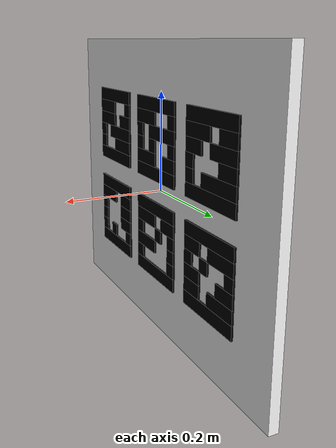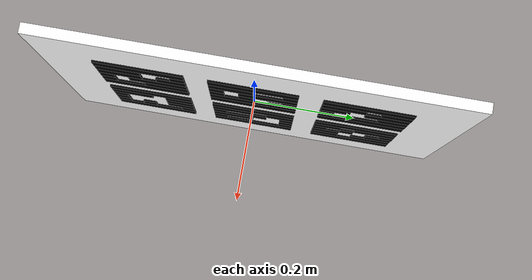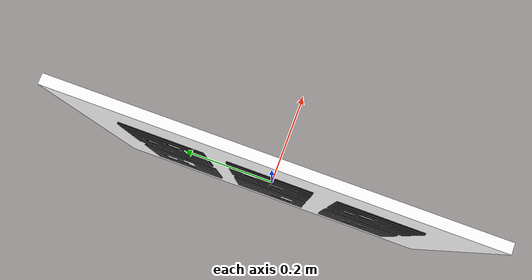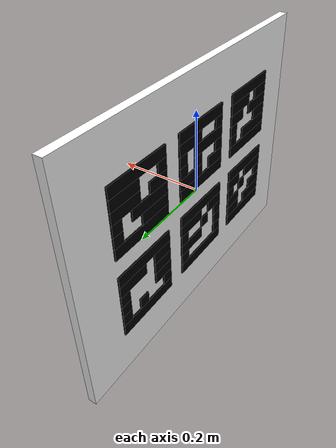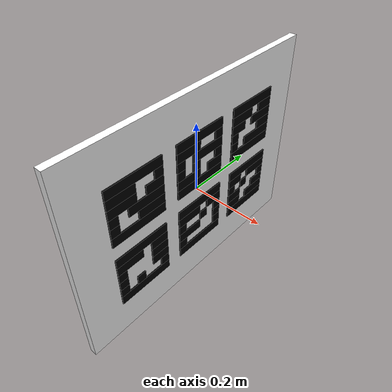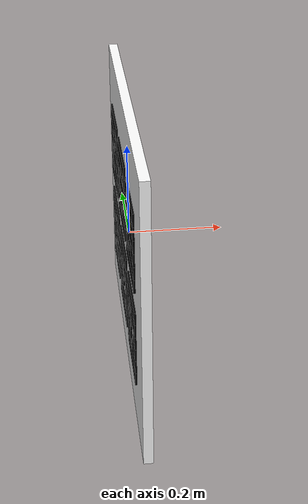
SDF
<sdf version="1.8">
 <model name="aruco_station_G_ids_42_47">
  <static>true</static>
  <link name="target_link">
   <visual name="white_board_base">
    <cast_shadows>false</cast_shadows>
    <geometry><box><size>0.02000000 0.80000000 0.60000000</size></box></geometry>
    <material>
     <ambient>1 1 1 1</ambient>
     <diffuse>1 1 1 1</diffuse>
     <specular>0 0 0 1</specular>
     <emissive>1 1 1 1</emissive>
    </material>
   </visual>
   <visual name="black_cell_front_plus_x_id42_r0_c0_6">
    <cast_shadows>false</cast_shadows>
    <pose>0.01300000 -0.21111111 0.17500000 0.00000000 0.00000000 0.00000000</pose>
    <geometry><box><size>0.00400000 0.16666667 0.02777778</size></box></geometry>
    <material>
     <ambient>0 0 0 1</ambient>
     <diffuse>0 0 0 1</diffuse>
     <specular>0 0 0 1</specular>
     <emissive>0 0 0 1</emissive>
    </material>
   </visual>
   <visual name="black_cell_front_plus_x_id42_r1_c0_3">
    <cast_shadows>false</cast_shadows>
    <pose>0.01300000 -0.25277778 0.14722222 0.00000000 0.00000000 0.00000000</pose>
    <geometry><box><size>0.00400000 0.08333333 0.02777778</size></box></geometry>
    <material>
     <ambient>0 0 0 1</ambient>
     <diffuse>0 0 0 1</diffuse>
     <specular>0 0 0 1</specular>
     <emissive>0 0 0 1</emissive>
    </material>
   </visual>
   <visual name="black_cell_front_plus_x_id42_r1_c5_6">
    <cast_shadows>false</cast_shadows>
    <pose>0.01300000 -0.14166667 0.14722222 0.00000000 0.00000000 0.00000000</pose>
    <geometry><box><size>0.00400000 0.02777778 0.02777778</size></box></geometry>
    <material>
     <ambient>0 0 0 1</ambient>
     <diffuse>0 0 0 1</diffuse>
     <specular>0 0 0 1</specular>
     <emissive>0 0 0 1</emissive>
    </material>
   </visual>
   <visual name="black_cell_front_plus_x_id42_r2_c0_3">
    <cast_shadows>false</cast_shadows>
    <pose>0.01300000 -0.25277778 0.11944444 0.00000000 0.00000000 0.00000000</pose>
    <geometry><box><size>0.00400000 0.08333333 0.02777778</size></box></geometry>
    <material>
     <ambient>0 0 0 1</ambient>
     <diffuse>0 0 0 1</diffuse>
     <specular>0 0 0 1</specular>
     <emissive>0 0 0 1</emissive>
    </material>
   </visual>
   <visual name="black_cell_front_plus_x_id42_r2_c4_6">
    <cast_shadows>false</cast_shadows>
    <pose>0.01300000 -0.15555556 0.11944444 0.00000000 0.00000000 0.00000000</pose>
    <geometry><box><size>0.00400000 0.05555556 0.02777778</size></box></geometry>
    <material>
     <ambient>0 0 0 1</ambient>
     <diffuse>0 0 0 1</diffuse>
     <specular>0 0 0 1</specular>
     <emissive>0 0 0 1</emissive>
    </material>
   </visual>
   <visual name="black_cell_front_plus_x_id42_r3_c0_1">
    <cast_shadows>false</cast_shadows>
    <pose>0.01300000 -0.28055556 0.09166667 0.00000000 0.00000000 0.00000000</pose>
    <geometry><box><size>0.00400000 0.02777778 0.02777778</size></box></geometry>
    <material>
     <ambient>0 0 0 1</ambient>
     <diffuse>0 0 0 1</diffuse>
     <specular>0 0 0 1</specular>
     <emissive>0 0 0 1</emissive>
    </material>
   </visual>
   <visual name="black_cell_front_plus_x_id42_r3_c2_6">
    <cast_shadows>false</cast_shadows>
    <pose>0.01300000 -0.18333333 0.09166667 0.00000000 0.00000000 0.00000000</pose>
    <geometry><box><size>0.00400000 0.11111111 0.02777778</size></box></geometry>
    <material>
     <ambient>0 0 0 1</ambient>
     <diffuse>0 0 0 1</diffuse>
     <specular>0 0 0 1</specular>
     <emissive>0 0 0 1</emissive>
    </material>
   </visual>
   <visual name="black_cell_front_plus_x_id42_r4_c0_1">
    <cast_shadows>false</cast_shadows>
    <pose>0.01300000 -0.28055556 0.06388889 0.00000000 0.00000000 0.00000000</pose>
    <geometry><box><size>0.00400000 0.02777778 0.02777778</size></box></geometry>
    <material>
     <ambient>0 0 0 1</ambient>
     <diffuse>0 0 0 1</diffuse>
     <specular>0 0 0 1</specular>
     <emissive>0 0 0 1</emissive>
    </material>
   </visual>
   <visual name="black_cell_front_plus_x_id42_r4_c3_6">
    <cast_shadows>false</cast_shadows>
    <pose>0.01300000 -0.16944444 0.06388889 0.00000000 0.00000000 0.00000000</pose>
    <geometry><box><size>0.00400000 0.08333333 0.02777778</size></box></geometry>
    <material>
     <ambient>0 0 0 1</ambient>
     <diffuse>0 0 0 1</diffuse>
     <specular>0 0 0 1</specular>
     <emissive>0 0 0 1</emissive>
    </material>
   </visual>
   <visual name="black_cell_front_plus_x_id42_r5_c0_6">
    <cast_shadows>false</cast_shadows>
    <pose>0.01300000 -0.21111111 0.03611111 0.00000000 0.00000000 0.00000000</pose>
    <geometry><box><size>0.00400000 0.16666667 0.02777778</size></box></geometry>
    <material>
     <ambient>0 0 0 1</ambient>
     <diffuse>0 0 0 1</diffuse>
     <specular>0 0 0 1</specular>
     <emissive>0 0 0 1</emissive>
    </material>
   </visual>
   <visual name="black_cell_back_minus_x_id42_r0_c0_6">
    <cast_shadows>false</cast_shadows>
    <pose>-0.01300000 0.21111111 0.17500000 0.00000000 0.00000000 0.00000000</pose>
    <geometry><box><size>0.00400000 0.16666667 0.02777778</size></box></geometry>
    <material>
     <ambient>0 0 0 1</ambient>
     <diffuse>0 0 0 1</diffuse>
     <specular>0 0 0 1</specular>
     <emissive>0 0 0 1</emissive>
    </material>
   </visual>
   <visual name="black_cell_back_minus_x_id42_r1_c0_3">
    <cast_shadows>false</cast_shadows>
    <pose>-0.01300000 0.25277778 0.14722222 0.00000000 0.00000000 0.00000000</pose>
    <geometry><box><size>0.00400000 0.08333333 0.02777778</size></box></geometry>
    <material>
     <ambient>0 0 0 1</ambient>
     <diffuse>0 0 0 1</diffuse>
     <specular>0 0 0 1</specular>
     <emissive>0 0 0 1</emissive>
    </material>
   </visual>
   <visual name="black_cell_back_minus_x_id42_r1_c5_6">
    <cast_shadows>false</cast_shadows>
    <pose>-0.01300000 0.14166667 0.14722222 0.00000000 0.00000000 0.00000000</pose>
    <geometry><box><size>0.00400000 0.02777778 0.02777778</size></box></geometry>
    <material>
     <ambient>0 0 0 1</ambient>
     <diffuse>0 0 0 1</diffuse>
     <specular>0 0 0 1</specular>
     <emissive>0 0 0 1</emissive>
    </material>
   </visual>
   <visual name="black_cell_back_minus_x_id42_r2_c0_3">
    <cast_shadows>false</cast_shadows>
    <pose>-0.01300000 0.25277778 0.11944444 0.00000000 0.00000000 0.00000000</pose>
    <geometry><box><size>0.00400000 0.08333333 0.02777778</size></box></geometry>
    <material>
     <ambient>0 0 0 1</ambient>
     <diffuse>0 0 0 1</diffuse>
     <specular>0 0 0 1</specular>
     <emissive>0 0 0 1</emissive>
    </material>
   </visual>
   <visual name="black_cell_back_minus_x_id42_r2_c4_6">
    <cast_shadows>false</cast_shadows>
    <pose>-0.01300000 0.15555556 0.11944444 0.00000000 0.00000000 0.00000000</pose>
    <geometry><box><size>0.00400000 0.05555556 0.02777778</size></box></geometry>
    <material>
     <ambient>0 0 0 1</ambient>
     <diffuse>0 0 0 1</diffuse>
     <specular>0 0 0 1</specular>
     <emissive>0 0 0 1</emissive>
    </material>
   </visual>
   <visual name="black_cell_back_minus_x_id42_r3_c0_1">
    <cast_shadows>false</cast_shadows>
    <pose>-0.01300000 0.28055556 0.09166667 0.00000000 0.00000000 0.00000000</pose>
    <geometry><box><size>0.00400000 0.02777778 0.02777778</size></box></geometry>
    <material>
     <ambient>0 0 0 1</ambient>
     <diffuse>0 0 0 1</diffuse>
     <specular>0 0 0 1</specular>
     <emissive>0 0 0 1</emissive>
    </material>
   </visual>
   <visual name="black_cell_back_minus_x_id42_r3_c2_6">
    <cast_shadows>false</cast_shadows>
    <pose>-0.01300000 0.18333333 0.09166667 0.00000000 0.00000000 0.00000000</pose>
    <geometry><box><size>0.00400000 0.11111111 0.02777778</size></box></geometry>
    <material>
     <ambient>0 0 0 1</ambient>
     <diffuse>0 0 0 1</diffuse>
     <specular>0 0 0 1</specular>
     <emissive>0 0 0 1</emissive>
    </material>
   </visual>
   <visual name="black_cell_back_minus_x_id42_r4_c0_1">
    <cast_shadows>false</cast_shadows>
    <pose>-0.01300000 0.28055556 0.06388889 0.00000000 0.00000000 0.00000000</pose>
    <geometry><box><size>0.00400000 0.02777778 0.02777778</size></box></geometry>
    <material>
     <ambient>0 0 0 1</ambient>
     <diffuse>0 0 0 1</diffuse>
     <specular>0 0 0 1</specular>
     <emissive>0 0 0 1</emissive>
    </material>
   </visual>
   <visual name="black_cell_back_minus_x_id42_r4_c3_6">
    <cast_shadows>false</cast_shadows>
    <pose>-0.01300000 0.16944444 0.06388889 0.00000000 0.00000000 0.00000000</pose>
    <geometry><box><size>0.00400000 0.08333333 0.02777778</size></box></geometry>
    <material>
     <ambient>0 0 0 1</ambient>
     <diffuse>0 0 0 1</diffuse>
     <specular>0 0 0 1</specular>
     <emissive>0 0 0 1</emissive>
    </material>
   </visual>
   <visual name="black_cell_back_minus_x_id42_r5_c0_6">
    <cast_shadows>false</cast_shadows>
    <pose>-0.01300000 0.21111111 0.03611111 0.00000000 0.00000000 0.00000000</pose>
    <geometry><box><size>0.00400000 0.16666667 0.02777778</size></box></geometry>
    <material>
     <ambient>0 0 0 1</ambient>
     <diffuse>0 0 0 1</diffuse>
     <specular>0 0 0 1</specular>
     <emissive>0 0 0 1</emissive>
    </material>
   </visual>
   <visual name="black_cell_front_plus_x_id43_r0_c0_6">
    <cast_shadows>false</cast_shadows>
    <pose>0.01300000 -0.00000000 0.17500000 0.00000000 0.00000000 0.00000000</pose>
    <geometry><box><size>0.00400000 0.16666667 0.02777778</size></box></geometry>
    <material>
     <ambient>0 0 0 1</ambient>
     <diffuse>0 0 0 1</diffuse>
     <specular>0 0 0 1</specular>
     <emissive>0 0 0 1</emissive>
    </material>
   </visual>
   <visual name="black_cell_front_plus_x_id43_r1_c0_3">
    <cast_shadows>false</cast_shadows>
    <pose>0.01300000 -0.04166667 0.14722222 0.00000000 0.00000000 0.00000000</pose>
    <geometry><box><size>0.00400000 0.08333333 0.02777778</size></box></geometry>
    <material>
     <ambient>0 0 0 1</ambient>
     <diffuse>0 0 0 1</diffuse>
     <specular>0 0 0 1</specular>
     <emissive>0 0 0 1</emissive>
    </material>
   </visual>
   <visual name="black_cell_front_plus_x_id43_r1_c5_6">
    <cast_shadows>false</cast_shadows>
    <pose>0.01300000 0.06944444 0.14722222 0.00000000 0.00000000 0.00000000</pose>
    <geometry><box><size>0.00400000 0.02777778 0.02777778</size></box></geometry>
    <material>
     <ambient>0 0 0 1</ambient>
     <diffuse>0 0 0 1</diffuse>
     <specular>0 0 0 1</specular>
     <emissive>0 0 0 1</emissive>
    </material>
   </visual>
   <visual name="black_cell_front_plus_x_id43_r2_c0_1">
    <cast_shadows>false</cast_shadows>
    <pose>0.01300000 -0.06944444 0.11944444 0.00000000 0.00000000 0.00000000</pose>
    <geometry><box><size>0.00400000 0.02777778 0.02777778</size></box></geometry>
    <material>
     <ambient>0 0 0 1</ambient>
     <diffuse>0 0 0 1</diffuse>
     <specular>0 0 0 1</specular>
     <emissive>0 0 0 1</emissive>
    </material>
   </visual>
   <visual name="black_cell_front_plus_x_id43_r2_c2_6">
    <cast_shadows>false</cast_shadows>
    <pose>0.01300000 0.02777778 0.11944444 0.00000000 0.00000000 0.00000000</pose>
    <geometry><box><size>0.00400000 0.11111111 0.02777778</size></box></geometry>
    <material>
     <ambient>0 0 0 1</ambient>
     <diffuse>0 0 0 1</diffuse>
     <specular>0 0 0 1</specular>
     <emissive>0 0 0 1</emissive>
    </material>
   </visual>
   <visual name="black_cell_front_plus_x_id43_r3_c0_1">
    <cast_shadows>false</cast_shadows>
    <pose>0.01300000 -0.06944444 0.09166667 0.00000000 0.00000000 0.00000000</pose>
    <geometry><box><size>0.00400000 0.02777778 0.02777778</size></box></geometry>
    <material>
     <ambient>0 0 0 1</ambient>
     <diffuse>0 0 0 1</diffuse>
     <specular>0 0 0 1</specular>
     <emissive>0 0 0 1</emissive>
    </material>
   </visual>
   <visual name="black_cell_front_plus_x_id43_r3_c2_3">
    <cast_shadows>false</cast_shadows>
    <pose>0.01300000 -0.01388889 0.09166667 0.00000000 0.00000000 0.00000000</pose>
    <geometry><box><size>0.00400000 0.02777778 0.02777778</size></box></geometry>
    <material>
     <ambient>0 0 0 1</ambient>
     <diffuse>0 0 0 1</diffuse>
     <specular>0 0 0 1</specular>
     <emissive>0 0 0 1</emissive>
    </material>
   </visual>
   <visual name="black_cell_front_plus_x_id43_r3_c5_6">
    <cast_shadows>false</cast_shadows>
    <pose>0.01300000 0.06944444 0.09166667 0.00000000 0.00000000 0.00000000</pose>
    <geometry><box><size>0.00400000 0.02777778 0.02777778</size></box></geometry>
    <material>
     <ambient>0 0 0 1</ambient>
     <diffuse>0 0 0 1</diffuse>
     <specular>0 0 0 1</specular>
     <emissive>0 0 0 1</emissive>
    </material>
   </visual>
   <visual name="black_cell_front_plus_x_id43_r4_c0_3">
    <cast_shadows>false</cast_shadows>
    <pose>0.01300000 -0.04166667 0.06388889 0.00000000 0.00000000 0.00000000</pose>
    <geometry><box><size>0.00400000 0.08333333 0.02777778</size></box></geometry>
    <material>
     <ambient>0 0 0 1</ambient>
     <diffuse>0 0 0 1</diffuse>
     <specular>0 0 0 1</specular>
     <emissive>0 0 0 1</emissive>
    </material>
   </visual>
   <visual name="black_cell_front_plus_x_id43_r4_c4_6">
    <cast_shadows>false</cast_shadows>
    <pose>0.01300000 0.05555556 0.06388889 0.00000000 0.00000000 0.00000000</pose>
    <geometry><box><size>0.00400000 0.05555556 0.02777778</size></box></geometry>
    <material>
     <ambient>0 0 0 1</ambient>
     <diffuse>0 0 0 1</diffuse>
     <specular>0 0 0 1</specular>
     <emissive>0 0 0 1</emissive>
    </material>
   </visual>
   <visual name="black_cell_front_plus_x_id43_r5_c0_6">
    <cast_shadows>false</cast_shadows>
    <pose>0.01300000 -0.00000000 0.03611111 0.00000000 0.00000000 0.00000000</pose>
    <geometry><box><size>0.00400000 0.16666667 0.02777778</size></box></geometry>
    <material>
     <ambient>0 0 0 1</ambient>
     <diffuse>0 0 0 1</diffuse>
     <specular>0 0 0 1</specular>
     <emissive>0 0 0 1</emissive>
    </material>
   </visual>
   <visual name="black_cell_back_minus_x_id43_r0_c0_6">
    <cast_shadows>false</cast_shadows>
    <pose>-0.01300000 0.00000000 0.17500000 0.00000000 0.00000000 0.00000000</pose>
    <geometry><box><size>0.00400000 0.16666667 0.02777778</size></box></geometry>
    <material>
     <ambient>0 0 0 1</ambient>
     <diffuse>0 0 0 1</diffuse>
     <specular>0 0 0 1</specular>
     <emissive>0 0 0 1</emissive>
    </material>
   </visual>
   <visual name="black_cell_back_minus_x_id43_r1_c0_3">
    <cast_shadows>false</cast_shadows>
    <pose>-0.01300000 0.04166667 0.14722222 0.00000000 0.00000000 0.00000000</pose>
    <geometry><box><size>0.00400000 0.08333333 0.02777778</size></box></geometry>
    <material>
     <ambient>0 0 0 1</ambient>
     <diffuse>0 0 0 1</diffuse>
     <specular>0 0 0 1</specular>
     <emissive>0 0 0 1</emissive>
    </material>
   </visual>
   <visual name="black_cell_back_minus_x_id43_r1_c5_6">
    <cast_shadows>false</cast_shadows>
    <pose>-0.01300000 -0.06944444 0.14722222 0.00000000 0.00000000 0.00000000</pose>
    <geometry><box><size>0.00400000 0.02777778 0.02777778</size></box></geometry>
    <material>
     <ambient>0 0 0 1</ambient>
     <diffuse>0 0 0 1</diffuse>
     <specular>0 0 0 1</specular>
     <emissive>0 0 0 1</emissive>
    </material>
   </visual>
   <visual name="black_cell_back_minus_x_id43_r2_c0_1">
    <cast_shadows>false</cast_shadows>
    <pose>-0.01300000 0.06944444 0.11944444 0.00000000 0.00000000 0.00000000</pose>
    <geometry><box><size>0.00400000 0.02777778 0.02777778</size></box></geometry>
    <material>
     <ambient>0 0 0 1</ambient>
     <diffuse>0 0 0 1</diffuse>
     <specular>0 0 0 1</specular>
     <emissive>0 0 0 1</emissive>
    </material>
   </visual>
   <visual name="black_cell_back_minus_x_id43_r2_c2_6">
    <cast_shadows>false</cast_shadows>
    <pose>-0.01300000 -0.02777778 0.11944444 0.00000000 0.00000000 0.00000000</pose>
    <geometry><box><size>0.00400000 0.11111111 0.02777778</size></box></geometry>
    <material>
     <ambient>0 0 0 1</ambient>
     <diffuse>0 0 0 1</diffuse>
     <specular>0 0 0 1</specular>
     <emissive>0 0 0 1</emissive>
    </material>
   </visual>
   <visual name="black_cell_back_minus_x_id43_r3_c0_1">
    <cast_shadows>false</cast_shadows>
    <pose>-0.01300000 0.06944444 0.09166667 0.00000000 0.00000000 0.00000000</pose>
    <geometry><box><size>0.00400000 0.02777778 0.02777778</size></box></geometry>
    <material>
     <ambient>0 0 0 1</ambient>
     <diffuse>0 0 0 1</diffuse>
     <specular>0 0 0 1</specular>
     <emissive>0 0 0 1</emissive>
    </material>
   </visual>
   <visual name="black_cell_back_minus_x_id43_r3_c2_3">
    <cast_shadows>false</cast_shadows>
    <pose>-0.01300000 0.01388889 0.09166667 0.00000000 0.00000000 0.00000000</pose>
    <geometry><box><size>0.00400000 0.02777778 0.02777778</size></box></geometry>
    <material>
     <ambient>0 0 0 1</ambient>
     <diffuse>0 0 0 1</diffuse>
     <specular>0 0 0 1</specular>
     <emissive>0 0 0 1</emissive>
    </material>
   </visual>
   <visual name="black_cell_back_minus_x_id43_r3_c5_6">
    <cast_shadows>false</cast_shadows>
    <pose>-0.01300000 -0.06944444 0.09166667 0.00000000 0.00000000 0.00000000</pose>
    <geometry><box><size>0.00400000 0.02777778 0.02777778</size></box></geometry>
    <material>
     <ambient>0 0 0 1</ambient>
     <diffuse>0 0 0 1</diffuse>
     <specular>0 0 0 1</specular>
     <emissive>0 0 0 1</emissive>
    </material>
   </visual>
   <visual name="black_cell_back_minus_x_id43_r4_c0_3">
    <cast_shadows>false</cast_shadows>
    <pose>-0.01300000 0.04166667 0.06388889 0.00000000 0.00000000 0.00000000</pose>
    <geometry><box><size>0.00400000 0.08333333 0.02777778</size></box></geometry>
    <material>
     <ambient>0 0 0 1</ambient>
     <diffuse>0 0 0 1</diffuse>
     <specular>0 0 0 1</specular>
     <emissive>0 0 0 1</emissive>
    </material>
   </visual>
   <visual name="black_cell_back_minus_x_id43_r4_c4_6">
    <cast_shadows>false</cast_shadows>
    <pose>-0.01300000 -0.05555556 0.06388889 0.00000000 0.00000000 0.00000000</pose>
    <geometry><box><size>0.00400000 0.05555556 0.02777778</size></box></geometry>
    <material>
     <ambient>0 0 0 1</ambient>
     <diffuse>0 0 0 1</diffuse>
     <specular>0 0 0 1</specular>
     <emissive>0 0 0 1</emissive>
    </material>
   </visual>
   <visual name="black_cell_back_minus_x_id43_r5_c0_6">
    <cast_shadows>false</cast_shadows>
    <pose>-0.01300000 0.00000000 0.03611111 0.00000000 0.00000000 0.00000000</pose>
    <geometry><box><size>0.00400000 0.16666667 0.02777778</size></box></geometry>
    <material>
     <ambient>0 0 0 1</ambient>
     <diffuse>0 0 0 1</diffuse>
     <specular>0 0 0 1</specular>
     <emissive>0 0 0 1</emissive>
    </material>
   </visual>
   <visual name="black_cell_front_plus_x_id44_r0_c0_6">
    <cast_shadows>false</cast_shadows>
    <pose>0.01300000 0.21111111 0.17500000 0.00000000 0.00000000 0.00000000</pose>
    <geometry><box><size>0.00400000 0.16666667 0.02777778</size></box></geometry>
    <material>
     <ambient>0 0 0 1</ambient>
     <diffuse>0 0 0 1</diffuse>
     <specular>0 0 0 1</specular>
     <emissive>0 0 0 1</emissive>
    </material>
   </visual>
   <visual name="black_cell_front_plus_x_id44_r1_c0_3">
    <cast_shadows>false</cast_shadows>
    <pose>0.01300000 0.16944444 0.14722222 0.00000000 0.00000000 0.00000000</pose>
    <geometry><box><size>0.00400000 0.08333333 0.02777778</size></box></geometry>
    <material>
     <ambient>0 0 0 1</ambient>
     <diffuse>0 0 0 1</diffuse>
     <specular>0 0 0 1</specular>
     <emissive>0 0 0 1</emissive>
    </material>
   </visual>
   <visual name="black_cell_front_plus_x_id44_r1_c4_6">
    <cast_shadows>false</cast_shadows>
    <pose>0.01300000 0.26666667 0.14722222 0.00000000 0.00000000 0.00000000</pose>
    <geometry><box><size>0.00400000 0.05555556 0.02777778</size></box></geometry>
    <material>
     <ambient>0 0 0 1</ambient>
     <diffuse>0 0 0 1</diffuse>
     <specular>0 0 0 1</specular>
     <emissive>0 0 0 1</emissive>
    </material>
   </visual>
   <visual name="black_cell_front_plus_x_id44_r2_c0_2">
    <cast_shadows>false</cast_shadows>
    <pose>0.01300000 0.15555556 0.11944444 0.00000000 0.00000000 0.00000000</pose>
    <geometry><box><size>0.00400000 0.05555556 0.02777778</size></box></geometry>
    <material>
     <ambient>0 0 0 1</ambient>
     <diffuse>0 0 0 1</diffuse>
     <specular>0 0 0 1</specular>
     <emissive>0 0 0 1</emissive>
    </material>
   </visual>
   <visual name="black_cell_front_plus_x_id44_r2_c3_6">
    <cast_shadows>false</cast_shadows>
    <pose>0.01300000 0.25277778 0.11944444 0.00000000 0.00000000 0.00000000</pose>
    <geometry><box><size>0.00400000 0.08333333 0.02777778</size></box></geometry>
    <material>
     <ambient>0 0 0 1</ambient>
     <diffuse>0 0 0 1</diffuse>
     <specular>0 0 0 1</specular>
     <emissive>0 0 0 1</emissive>
    </material>
   </visual>
   <visual name="black_cell_front_plus_x_id44_r3_c0_1">
    <cast_shadows>false</cast_shadows>
    <pose>0.01300000 0.14166667 0.09166667 0.00000000 0.00000000 0.00000000</pose>
    <geometry><box><size>0.00400000 0.02777778 0.02777778</size></box></geometry>
    <material>
     <ambient>0 0 0 1</ambient>
     <diffuse>0 0 0 1</diffuse>
     <specular>0 0 0 1</specular>
     <emissive>0 0 0 1</emissive>
    </material>
   </visual>
   <visual name="black_cell_front_plus_x_id44_r3_c4_6">
    <cast_shadows>false</cast_shadows>
    <pose>0.01300000 0.26666667 0.09166667 0.00000000 0.00000000 0.00000000</pose>
    <geometry><box><size>0.00400000 0.05555556 0.02777778</size></box></geometry>
    <material>
     <ambient>0 0 0 1</ambient>
     <diffuse>0 0 0 1</diffuse>
     <specular>0 0 0 1</specular>
     <emissive>0 0 0 1</emissive>
    </material>
   </visual>
   <visual name="black_cell_front_plus_x_id44_r4_c0_1">
    <cast_shadows>false</cast_shadows>
    <pose>0.01300000 0.14166667 0.06388889 0.00000000 0.00000000 0.00000000</pose>
    <geometry><box><size>0.00400000 0.02777778 0.02777778</size></box></geometry>
    <material>
     <ambient>0 0 0 1</ambient>
     <diffuse>0 0 0 1</diffuse>
     <specular>0 0 0 1</specular>
     <emissive>0 0 0 1</emissive>
    </material>
   </visual>
   <visual name="black_cell_front_plus_x_id44_r4_c2_6">
    <cast_shadows>false</cast_shadows>
    <pose>0.01300000 0.23888889 0.06388889 0.00000000 0.00000000 0.00000000</pose>
    <geometry><box><size>0.00400000 0.11111111 0.02777778</size></box></geometry>
    <material>
     <ambient>0 0 0 1</ambient>
     <diffuse>0 0 0 1</diffuse>
     <specular>0 0 0 1</specular>
     <emissive>0 0 0 1</emissive>
    </material>
   </visual>
   <visual name="black_cell_front_plus_x_id44_r5_c0_6">
    <cast_shadows>false</cast_shadows>
    <pose>0.01300000 0.21111111 0.03611111 0.00000000 0.00000000 0.00000000</pose>
    <geometry><box><size>0.00400000 0.16666667 0.02777778</size></box></geometry>
    <material>
     <ambient>0 0 0 1</ambient>
     <diffuse>0 0 0 1</diffuse>
     <specular>0 0 0 1</specular>
     <emissive>0 0 0 1</emissive>
    </material>
   </visual>
   <visual name="black_cell_back_minus_x_id44_r0_c0_6">
    <cast_shadows>false</cast_shadows>
    <pose>-0.01300000 -0.21111111 0.17500000 0.00000000 0.00000000 0.00000000</pose>
    <geometry><box><size>0.00400000 0.16666667 0.02777778</size></box></geometry>
    <material>
     <ambient>0 0 0 1</ambient>
     <diffuse>0 0 0 1</diffuse>
     <specular>0 0 0 1</specular>
     <emissive>0 0 0 1</emissive>
    </material>
   </visual>
   <visual name="black_cell_back_minus_x_id44_r1_c0_3">
    <cast_shadows>false</cast_shadows>
    <pose>-0.01300000 -0.16944444 0.14722222 0.00000000 0.00000000 0.00000000</pose>
    <geometry><box><size>0.00400000 0.08333333 0.02777778</size></box></geometry>
    <material>
     <ambient>0 0 0 1</ambient>
     <diffuse>0 0 0 1</diffuse>
     <specular>0 0 0 1</specular>
     <emissive>0 0 0 1</emissive>
    </material>
   </visual>
   <visual name="black_cell_back_minus_x_id44_r1_c4_6">
    <cast_shadows>false</cast_shadows>
    <pose>-0.01300000 -0.26666667 0.14722222 0.00000000 0.00000000 0.00000000</pose>
    <geometry><box><size>0.00400000 0.05555556 0.02777778</size></box></geometry>
    <material>
     <ambient>0 0 0 1</ambient>
     <diffuse>0 0 0 1</diffuse>
     <specular>0 0 0 1</specular>
     <emissive>0 0 0 1</emissive>
    </material>
   </visual>
   <visual name="black_cell_back_minus_x_id44_r2_c0_2">
    <cast_shadows>false</cast_shadows>
    <pose>-0.01300000 -0.15555556 0.11944444 0.00000000 0.00000000 0.00000000</pose>
    <geometry><box><size>0.00400000 0.05555556 0.02777778</size></box></geometry>
    <material>
     <ambient>0 0 0 1</ambient>
     <diffuse>0 0 0 1</diffuse>
     <specular>0 0 0 1</specular>
     <emissive>0 0 0 1</emissive>
    </material>
   </visual>
   <visual name="black_cell_back_minus_x_id44_r2_c3_6">
    <cast_shadows>false</cast_shadows>
    <pose>-0.01300000 -0.25277778 0.11944444 0.00000000 0.00000000 0.00000000</pose>
    <geometry><box><size>0.00400000 0.08333333 0.02777778</size></box></geometry>
    <material>
     <ambient>0 0 0 1</ambient>
     <diffuse>0 0 0 1</diffuse>
     <specular>0 0 0 1</specular>
     <emissive>0 0 0 1</emissive>
    </material>
   </visual>
   <visual name="black_cell_back_minus_x_id44_r3_c0_1">
    <cast_shadows>false</cast_shadows>
    <pose>-0.01300000 -0.14166667 0.09166667 0.00000000 0.00000000 0.00000000</pose>
    <geometry><box><size>0.00400000 0.02777778 0.02777778</size></box></geometry>
    <material>
     <ambient>0 0 0 1</ambient>
     <diffuse>0 0 0 1</diffuse>
     <specular>0 0 0 1</specular>
     <emissive>0 0 0 1</emissive>
    </material>
   </visual>
   <visual name="black_cell_back_minus_x_id44_r3_c4_6">
    <cast_shadows>false</cast_shadows>
    <pose>-0.01300000 -0.26666667 0.09166667 0.00000000 0.00000000 0.00000000</pose>
    <geometry><box><size>0.00400000 0.05555556 0.02777778</size></box></geometry>
    <material>
     <ambient>0 0 0 1</ambient>
     <diffuse>0 0 0 1</diffuse>
     <specular>0 0 0 1</specular>
     <emissive>0 0 0 1</emissive>
    </material>
   </visual>
   <visual name="black_cell_back_minus_x_id44_r4_c0_1">
    <cast_shadows>false</cast_shadows>
    <pose>-0.01300000 -0.14166667 0.06388889 0.00000000 0.00000000 0.00000000</pose>
    <geometry><box><size>0.00400000 0.02777778 0.02777778</size></box></geometry>
    <material>
     <ambient>0 0 0 1</ambient>
     <diffuse>0 0 0 1</diffuse>
     <specular>0 0 0 1</specular>
     <emissive>0 0 0 1</emissive>
    </material>
   </visual>
   <visual name="black_cell_back_minus_x_id44_r4_c2_6">
    <cast_shadows>false</cast_shadows>
    <pose>-0.01300000 -0.23888889 0.06388889 0.00000000 0.00000000 0.00000000</pose>
    <geometry><box><size>0.00400000 0.11111111 0.02777778</size></box></geometry>
    <material>
     <ambient>0 0 0 1</ambient>
     <diffuse>0 0 0 1</diffuse>
     <specular>0 0 0 1</specular>
     <emissive>0 0 0 1</emissive>
    </material>
   </visual>
   <visual name="black_cell_back_minus_x_id44_r5_c0_6">
    <cast_shadows>false</cast_shadows>
    <pose>-0.01300000 -0.21111111 0.03611111 0.00000000 0.00000000 0.00000000</pose>
    <geometry><box><size>0.00400000 0.16666667 0.02777778</size></box></geometry>
    <material>
     <ambient>0 0 0 1</ambient>
     <diffuse>0 0 0 1</diffuse>
     <specular>0 0 0 1</specular>
     <emissive>0 0 0 1</emissive>
    </material>
   </visual>
   <visual name="black_cell_front_plus_x_id45_r0_c0_6">
    <cast_shadows>false</cast_shadows>
    <pose>0.01300000 -0.21111111 -0.03611111 0.00000000 0.00000000 0.00000000</pose>
    <geometry><box><size>0.00400000 0.16666667 0.02777778</size></box></geometry>
    <material>
     <ambient>0 0 0 1</ambient>
     <diffuse>0 0 0 1</diffuse>
     <specular>0 0 0 1</specular>
     <emissive>0 0 0 1</emissive>
    </material>
   </visual>
   <visual name="black_cell_front_plus_x_id45_r1_c0_3">
    <cast_shadows>false</cast_shadows>
    <pose>0.01300000 -0.25277778 -0.06388889 0.00000000 0.00000000 0.00000000</pose>
    <geometry><box><size>0.00400000 0.08333333 0.02777778</size></box></geometry>
    <material>
     <ambient>0 0 0 1</ambient>
     <diffuse>0 0 0 1</diffuse>
     <specular>0 0 0 1</specular>
     <emissive>0 0 0 1</emissive>
    </material>
   </visual>
   <visual name="black_cell_front_plus_x_id45_r1_c4_6">
    <cast_shadows>false</cast_shadows>
    <pose>0.01300000 -0.15555556 -0.06388889 0.00000000 0.00000000 0.00000000</pose>
    <geometry><box><size>0.00400000 0.05555556 0.02777778</size></box></geometry>
    <material>
     <ambient>0 0 0 1</ambient>
     <diffuse>0 0 0 1</diffuse>
     <specular>0 0 0 1</specular>
     <emissive>0 0 0 1</emissive>
    </material>
   </visual>
   <visual name="black_cell_front_plus_x_id45_r2_c0_1">
    <cast_shadows>false</cast_shadows>
    <pose>0.01300000 -0.28055556 -0.09166667 0.00000000 0.00000000 0.00000000</pose>
    <geometry><box><size>0.00400000 0.02777778 0.02777778</size></box></geometry>
    <material>
     <ambient>0 0 0 1</ambient>
     <diffuse>0 0 0 1</diffuse>
     <specular>0 0 0 1</specular>
     <emissive>0 0 0 1</emissive>
    </material>
   </visual>
   <visual name="black_cell_front_plus_x_id45_r2_c4_6">
    <cast_shadows>false</cast_shadows>
    <pose>0.01300000 -0.15555556 -0.09166667 0.00000000 0.00000000 0.00000000</pose>
    <geometry><box><size>0.00400000 0.05555556 0.02777778</size></box></geometry>
    <material>
     <ambient>0 0 0 1</ambient>
     <diffuse>0 0 0 1</diffuse>
     <specular>0 0 0 1</specular>
     <emissive>0 0 0 1</emissive>
    </material>
   </visual>
   <visual name="black_cell_front_plus_x_id45_r3_c0_1">
    <cast_shadows>false</cast_shadows>
    <pose>0.01300000 -0.28055556 -0.11944444 0.00000000 0.00000000 0.00000000</pose>
    <geometry><box><size>0.00400000 0.02777778 0.02777778</size></box></geometry>
    <material>
     <ambient>0 0 0 1</ambient>
     <diffuse>0 0 0 1</diffuse>
     <specular>0 0 0 1</specular>
     <emissive>0 0 0 1</emissive>
    </material>
   </visual>
   <visual name="black_cell_front_plus_x_id45_r3_c4_6">
    <cast_shadows>false</cast_shadows>
    <pose>0.01300000 -0.15555556 -0.11944444 0.00000000 0.00000000 0.00000000</pose>
    <geometry><box><size>0.00400000 0.05555556 0.02777778</size></box></geometry>
    <material>
     <ambient>0 0 0 1</ambient>
     <diffuse>0 0 0 1</diffuse>
     <specular>0 0 0 1</specular>
     <emissive>0 0 0 1</emissive>
    </material>
   </visual>
   <visual name="black_cell_front_plus_x_id45_r4_c0_1">
    <cast_shadows>false</cast_shadows>
    <pose>0.01300000 -0.28055556 -0.14722222 0.00000000 0.00000000 0.00000000</pose>
    <geometry><box><size>0.00400000 0.02777778 0.02777778</size></box></geometry>
    <material>
     <ambient>0 0 0 1</ambient>
     <diffuse>0 0 0 1</diffuse>
     <specular>0 0 0 1</specular>
     <emissive>0 0 0 1</emissive>
    </material>
   </visual>
   <visual name="black_cell_front_plus_x_id45_r4_c2_3">
    <cast_shadows>false</cast_shadows>
    <pose>0.01300000 -0.22500000 -0.14722222 0.00000000 0.00000000 0.00000000</pose>
    <geometry><box><size>0.00400000 0.02777778 0.02777778</size></box></geometry>
    <material>
     <ambient>0 0 0 1</ambient>
     <diffuse>0 0 0 1</diffuse>
     <specular>0 0 0 1</specular>
     <emissive>0 0 0 1</emissive>
    </material>
   </visual>
   <visual name="black_cell_front_plus_x_id45_r4_c5_6">
    <cast_shadows>false</cast_shadows>
    <pose>0.01300000 -0.14166667 -0.14722222 0.00000000 0.00000000 0.00000000</pose>
    <geometry><box><size>0.00400000 0.02777778 0.02777778</size></box></geometry>
    <material>
     <ambient>0 0 0 1</ambient>
     <diffuse>0 0 0 1</diffuse>
     <specular>0 0 0 1</specular>
     <emissive>0 0 0 1</emissive>
    </material>
   </visual>
   <visual name="black_cell_front_plus_x_id45_r5_c0_6">
    <cast_shadows>false</cast_shadows>
    <pose>0.01300000 -0.21111111 -0.17500000 0.00000000 0.00000000 0.00000000</pose>
    <geometry><box><size>0.00400000 0.16666667 0.02777778</size></box></geometry>
    <material>
     <ambient>0 0 0 1</ambient>
     <diffuse>0 0 0 1</diffuse>
     <specular>0 0 0 1</specular>
     <emissive>0 0 0 1</emissive>
    </material>
   </visual>
   <visual name="black_cell_back_minus_x_id45_r0_c0_6">
    <cast_shadows>false</cast_shadows>
    <pose>-0.01300000 0.21111111 -0.03611111 0.00000000 0.00000000 0.00000000</pose>
    <geometry><box><size>0.00400000 0.16666667 0.02777778</size></box></geometry>
    <material>
     <ambient>0 0 0 1</ambient>
     <diffuse>0 0 0 1</diffuse>
     <specular>0 0 0 1</specular>
     <emissive>0 0 0 1</emissive>
    </material>
   </visual>
   <visual name="black_cell_back_minus_x_id45_r1_c0_3">
    <cast_shadows>false</cast_shadows>
    <pose>-0.01300000 0.25277778 -0.06388889 0.00000000 0.00000000 0.00000000</pose>
    <geometry><box><size>0.00400000 0.08333333 0.02777778</size></box></geometry>
    <material>
     <ambient>0 0 0 1</ambient>
     <diffuse>0 0 0 1</diffuse>
     <specular>0 0 0 1</specular>
     <emissive>0 0 0 1</emissive>
    </material>
   </visual>
   <visual name="black_cell_back_minus_x_id45_r1_c4_6">
    <cast_shadows>false</cast_shadows>
    <pose>-0.01300000 0.15555556 -0.06388889 0.00000000 0.00000000 0.00000000</pose>
    <geometry><box><size>0.00400000 0.05555556 0.02777778</size></box></geometry>
    <material>
     <ambient>0 0 0 1</ambient>
     <diffuse>0 0 0 1</diffuse>
     <specular>0 0 0 1</specular>
     <emissive>0 0 0 1</emissive>
    </material>
   </visual>
   <visual name="black_cell_back_minus_x_id45_r2_c0_1">
    <cast_shadows>false</cast_shadows>
    <pose>-0.01300000 0.28055556 -0.09166667 0.00000000 0.00000000 0.00000000</pose>
    <geometry><box><size>0.00400000 0.02777778 0.02777778</size></box></geometry>
    <material>
     <ambient>0 0 0 1</ambient>
     <diffuse>0 0 0 1</diffuse>
     <specular>0 0 0 1</specular>
     <emissive>0 0 0 1</emissive>
    </material>
   </visual>
   <visual name="black_cell_back_minus_x_id45_r2_c4_6">
    <cast_shadows>false</cast_shadows>
    <pose>-0.01300000 0.15555556 -0.09166667 0.00000000 0.00000000 0.00000000</pose>
    <geometry><box><size>0.00400000 0.05555556 0.02777778</size></box></geometry>
    <material>
     <ambient>0 0 0 1</ambient>
     <diffuse>0 0 0 1</diffuse>
     <specular>0 0 0 1</specular>
     <emissive>0 0 0 1</emissive>
    </material>
   </visual>
   <visual name="black_cell_back_minus_x_id45_r3_c0_1">
    <cast_shadows>false</cast_shadows>
    <pose>-0.01300000 0.28055556 -0.11944444 0.00000000 0.00000000 0.00000000</pose>
    <geometry><box><size>0.00400000 0.02777778 0.02777778</size></box></geometry>
    <material>
     <ambient>0 0 0 1</ambient>
     <diffuse>0 0 0 1</diffuse>
     <specular>0 0 0 1</specular>
     <emissive>0 0 0 1</emissive>
    </material>
   </visual>
   <visual name="black_cell_back_minus_x_id45_r3_c4_6">
    <cast_shadows>false</cast_shadows>
    <pose>-0.01300000 0.15555556 -0.11944444 0.00000000 0.00000000 0.00000000</pose>
    <geometry><box><size>0.00400000 0.05555556 0.02777778</size></box></geometry>
    <material>
     <ambient>0 0 0 1</ambient>
     <diffuse>0 0 0 1</diffuse>
     <specular>0 0 0 1</specular>
     <emissive>0 0 0 1</emissive>
    </material>
   </visual>
   <visual name="black_cell_back_minus_x_id45_r4_c0_1">
    <cast_shadows>false</cast_shadows>
    <pose>-0.01300000 0.28055556 -0.14722222 0.00000000 0.00000000 0.00000000</pose>
    <geometry><box><size>0.00400000 0.02777778 0.02777778</size></box></geometry>
    <material>
     <ambient>0 0 0 1</ambient>
     <diffuse>0 0 0 1</diffuse>
     <specular>0 0 0 1</specular>
     <emissive>0 0 0 1</emissive>
    </material>
   </visual>
   <visual name="black_cell_back_minus_x_id45_r4_c2_3">
    <cast_shadows>false</cast_shadows>
    <pose>-0.01300000 0.22500000 -0.14722222 0.00000000 0.00000000 0.00000000</pose>
    <geometry><box><size>0.00400000 0.02777778 0.02777778</size></box></geometry>
    <material>
     <ambient>0 0 0 1</ambient>
     <diffuse>0 0 0 1</diffuse>
     <specular>0 0 0 1</specular>
     <emissive>0 0 0 1</emissive>
    </material>
   </visual>
   <visual name="black_cell_back_minus_x_id45_r4_c5_6">
    <cast_shadows>false</cast_shadows>
    <pose>-0.01300000 0.14166667 -0.14722222 0.00000000 0.00000000 0.00000000</pose>
    <geometry><box><size>0.00400000 0.02777778 0.02777778</size></box></geometry>
    <material>
     <ambient>0 0 0 1</ambient>
     <diffuse>0 0 0 1</diffuse>
     <specular>0 0 0 1</specular>
     <emissive>0 0 0 1</emissive>
    </material>
   </visual>
   <visual name="black_cell_back_minus_x_id45_r5_c0_6">
    <cast_shadows>false</cast_shadows>
    <pose>-0.01300000 0.21111111 -0.17500000 0.00000000 0.00000000 0.00000000</pose>
    <geometry><box><size>0.00400000 0.16666667 0.02777778</size></box></geometry>
    <material>
     <ambient>0 0 0 1</ambient>
     <diffuse>0 0 0 1</diffuse>
     <specular>0 0 0 1</specular>
     <emissive>0 0 0 1</emissive>
    </material>
   </visual>
   <visual name="black_cell_front_plus_x_id46_r0_c0_6">
    <cast_shadows>false</cast_shadows>
    <pose>0.01300000 -0.00000000 -0.03611111 0.00000000 0.00000000 0.00000000</pose>
    <geometry><box><size>0.00400000 0.16666667 0.02777778</size></box></geometry>
    <material>
     <ambient>0 0 0 1</ambient>
     <diffuse>0 0 0 1</diffuse>
     <specular>0 0 0 1</specular>
     <emissive>0 0 0 1</emissive>
    </material>
   </visual>
   <visual name="black_cell_front_plus_x_id46_r1_c0_3">
    <cast_shadows>false</cast_shadows>
    <pose>0.01300000 -0.04166667 -0.06388889 0.00000000 0.00000000 0.00000000</pose>
    <geometry><box><size>0.00400000 0.08333333 0.02777778</size></box></geometry>
    <material>
     <ambient>0 0 0 1</ambient>
     <diffuse>0 0 0 1</diffuse>
     <specular>0 0 0 1</specular>
     <emissive>0 0 0 1</emissive>
    </material>
   </visual>
   <visual name="black_cell_front_plus_x_id46_r1_c4_6">
    <cast_shadows>false</cast_shadows>
    <pose>0.01300000 0.05555556 -0.06388889 0.00000000 0.00000000 0.00000000</pose>
    <geometry><box><size>0.00400000 0.05555556 0.02777778</size></box></geometry>
    <material>
     <ambient>0 0 0 1</ambient>
     <diffuse>0 0 0 1</diffuse>
     <specular>0 0 0 1</specular>
     <emissive>0 0 0 1</emissive>
    </material>
   </visual>
   <visual name="black_cell_front_plus_x_id46_r2_c0_1">
    <cast_shadows>false</cast_shadows>
    <pose>0.01300000 -0.06944444 -0.09166667 0.00000000 0.00000000 0.00000000</pose>
    <geometry><box><size>0.00400000 0.02777778 0.02777778</size></box></geometry>
    <material>
     <ambient>0 0 0 1</ambient>
     <diffuse>0 0 0 1</diffuse>
     <specular>0 0 0 1</specular>
     <emissive>0 0 0 1</emissive>
    </material>
   </visual>
   <visual name="black_cell_front_plus_x_id46_r2_c3_4">
    <cast_shadows>false</cast_shadows>
    <pose>0.01300000 0.01388889 -0.09166667 0.00000000 0.00000000 0.00000000</pose>
    <geometry><box><size>0.00400000 0.02777778 0.02777778</size></box></geometry>
    <material>
     <ambient>0 0 0 1</ambient>
     <diffuse>0 0 0 1</diffuse>
     <specular>0 0 0 1</specular>
     <emissive>0 0 0 1</emissive>
    </material>
   </visual>
   <visual name="black_cell_front_plus_x_id46_r2_c5_6">
    <cast_shadows>false</cast_shadows>
    <pose>0.01300000 0.06944444 -0.09166667 0.00000000 0.00000000 0.00000000</pose>
    <geometry><box><size>0.00400000 0.02777778 0.02777778</size></box></geometry>
    <material>
     <ambient>0 0 0 1</ambient>
     <diffuse>0 0 0 1</diffuse>
     <specular>0 0 0 1</specular>
     <emissive>0 0 0 1</emissive>
    </material>
   </visual>
   <visual name="black_cell_front_plus_x_id46_r3_c0_3">
    <cast_shadows>false</cast_shadows>
    <pose>0.01300000 -0.04166667 -0.11944444 0.00000000 0.00000000 0.00000000</pose>
    <geometry><box><size>0.00400000 0.08333333 0.02777778</size></box></geometry>
    <material>
     <ambient>0 0 0 1</ambient>
     <diffuse>0 0 0 1</diffuse>
     <specular>0 0 0 1</specular>
     <emissive>0 0 0 1</emissive>
    </material>
   </visual>
   <visual name="black_cell_front_plus_x_id46_r3_c5_6">
    <cast_shadows>false</cast_shadows>
    <pose>0.01300000 0.06944444 -0.11944444 0.00000000 0.00000000 0.00000000</pose>
    <geometry><box><size>0.00400000 0.02777778 0.02777778</size></box></geometry>
    <material>
     <ambient>0 0 0 1</ambient>
     <diffuse>0 0 0 1</diffuse>
     <specular>0 0 0 1</specular>
     <emissive>0 0 0 1</emissive>
    </material>
   </visual>
   <visual name="black_cell_front_plus_x_id46_r4_c0_1">
    <cast_shadows>false</cast_shadows>
    <pose>0.01300000 -0.06944444 -0.14722222 0.00000000 0.00000000 0.00000000</pose>
    <geometry><box><size>0.00400000 0.02777778 0.02777778</size></box></geometry>
    <material>
     <ambient>0 0 0 1</ambient>
     <diffuse>0 0 0 1</diffuse>
     <specular>0 0 0 1</specular>
     <emissive>0 0 0 1</emissive>
    </material>
   </visual>
   <visual name="black_cell_front_plus_x_id46_r4_c5_6">
    <cast_shadows>false</cast_shadows>
    <pose>0.01300000 0.06944444 -0.14722222 0.00000000 0.00000000 0.00000000</pose>
    <geometry><box><size>0.00400000 0.02777778 0.02777778</size></box></geometry>
    <material>
     <ambient>0 0 0 1</ambient>
     <diffuse>0 0 0 1</diffuse>
     <specular>0 0 0 1</specular>
     <emissive>0 0 0 1</emissive>
    </material>
   </visual>
   <visual name="black_cell_front_plus_x_id46_r5_c0_6">
    <cast_shadows>false</cast_shadows>
    <pose>0.01300000 -0.00000000 -0.17500000 0.00000000 0.00000000 0.00000000</pose>
    <geometry><box><size>0.00400000 0.16666667 0.02777778</size></box></geometry>
    <material>
     <ambient>0 0 0 1</ambient>
     <diffuse>0 0 0 1</diffuse>
     <specular>0 0 0 1</specular>
     <emissive>0 0 0 1</emissive>
    </material>
   </visual>
   <visual name="black_cell_back_minus_x_id46_r0_c0_6">
    <cast_shadows>false</cast_shadows>
    <pose>-0.01300000 0.00000000 -0.03611111 0.00000000 0.00000000 0.00000000</pose>
    <geometry><box><size>0.00400000 0.16666667 0.02777778</size></box></geometry>
    <material>
     <ambient>0 0 0 1</ambient>
     <diffuse>0 0 0 1</diffuse>
     <specular>0 0 0 1</specular>
     <emissive>0 0 0 1</emissive>
    </material>
   </visual>
   <visual name="black_cell_back_minus_x_id46_r1_c0_3">
    <cast_shadows>false</cast_shadows>
    <pose>-0.01300000 0.04166667 -0.06388889 0.00000000 0.00000000 0.00000000</pose>
    <geometry><box><size>0.00400000 0.08333333 0.02777778</size></box></geometry>
    <material>
     <ambient>0 0 0 1</ambient>
     <diffuse>0 0 0 1</diffuse>
     <specular>0 0 0 1</specular>
     <emissive>0 0 0 1</emissive>
    </material>
   </visual>
   <visual name="black_cell_back_minus_x_id46_r1_c4_6">
    <cast_shadows>false</cast_shadows>
    <pose>-0.01300000 -0.05555556 -0.06388889 0.00000000 0.00000000 0.00000000</pose>
    <geometry><box><size>0.00400000 0.05555556 0.02777778</size></box></geometry>
    <material>
     <ambient>0 0 0 1</ambient>
     <diffuse>0 0 0 1</diffuse>
     <specular>0 0 0 1</specular>
     <emissive>0 0 0 1</emissive>
    </material>
   </visual>
   <visual name="black_cell_back_minus_x_id46_r2_c0_1">
    <cast_shadows>false</cast_shadows>
    <pose>-0.01300000 0.06944444 -0.09166667 0.00000000 0.00000000 0.00000000</pose>
    <geometry><box><size>0.00400000 0.02777778 0.02777778</size></box></geometry>
    <material>
     <ambient>0 0 0 1</ambient>
     <diffuse>0 0 0 1</diffuse>
     <specular>0 0 0 1</specular>
     <emissive>0 0 0 1</emissive>
    </material>
   </visual>
   <visual name="black_cell_back_minus_x_id46_r2_c3_4">
    <cast_shadows>false</cast_shadows>
    <pose>-0.01300000 -0.01388889 -0.09166667 0.00000000 0.00000000 0.00000000</pose>
    <geometry><box><size>0.00400000 0.02777778 0.02777778</size></box></geometry>
    <material>
     <ambient>0 0 0 1</ambient>
     <diffuse>0 0 0 1</diffuse>
     <specular>0 0 0 1</specular>
     <emissive>0 0 0 1</emissive>
    </material>
   </visual>
   <visual name="black_cell_back_minus_x_id46_r2_c5_6">
    <cast_shadows>false</cast_shadows>
    <pose>-0.01300000 -0.06944444 -0.09166667 0.00000000 0.00000000 0.00000000</pose>
    <geometry><box><size>0.00400000 0.02777778 0.02777778</size></box></geometry>
    <material>
     <ambient>0 0 0 1</ambient>
     <diffuse>0 0 0 1</diffuse>
     <specular>0 0 0 1</specular>
     <emissive>0 0 0 1</emissive>
    </material>
   </visual>
   <visual name="black_cell_back_minus_x_id46_r3_c0_3">
    <cast_shadows>false</cast_shadows>
    <pose>-0.01300000 0.04166667 -0.11944444 0.00000000 0.00000000 0.00000000</pose>
    <geometry><box><size>0.00400000 0.08333333 0.02777778</size></box></geometry>
    <material>
     <ambient>0 0 0 1</ambient>
     <diffuse>0 0 0 1</diffuse>
     <specular>0 0 0 1</specular>
     <emissive>0 0 0 1</emissive>
    </material>
   </visual>
   <visual name="black_cell_back_minus_x_id46_r3_c5_6">
    <cast_shadows>false</cast_shadows>
    <pose>-0.01300000 -0.06944444 -0.11944444 0.00000000 0.00000000 0.00000000</pose>
    <geometry><box><size>0.00400000 0.02777778 0.02777778</size></box></geometry>
    <material>
     <ambient>0 0 0 1</ambient>
     <diffuse>0 0 0 1</diffuse>
     <specular>0 0 0 1</specular>
     <emissive>0 0 0 1</emissive>
    </material>
   </visual>
   <visual name="black_cell_back_minus_x_id46_r4_c0_1">
    <cast_shadows>false</cast_shadows>
    <pose>-0.01300000 0.06944444 -0.14722222 0.00000000 0.00000000 0.00000000</pose>
    <geometry><box><size>0.00400000 0.02777778 0.02777778</size></box></geometry>
    <material>
     <ambient>0 0 0 1</ambient>
     <diffuse>0 0 0 1</diffuse>
     <specular>0 0 0 1</specular>
     <emissive>0 0 0 1</emissive>
    </material>
   </visual>
   <visual name="black_cell_back_minus_x_id46_r4_c5_6">
    <cast_shadows>false</cast_shadows>
    <pose>-0.01300000 -0.06944444 -0.14722222 0.00000000 0.00000000 0.00000000</pose>
    <geometry><box><size>0.00400000 0.02777778 0.02777778</size></box></geometry>
    <material>
     <ambient>0 0 0 1</ambient>
     <diffuse>0 0 0 1</diffuse>
     <specular>0 0 0 1</specular>
     <emissive>0 0 0 1</emissive>
    </material>
   </visual>
   <visual name="black_cell_back_minus_x_id46_r5_c0_6">
    <cast_shadows>false</cast_shadows>
    <pose>-0.01300000 0.00000000 -0.17500000 0.00000000 0.00000000 0.00000000</pose>
    <geometry><box><size>0.00400000 0.16666667 0.02777778</size></box></geometry>
    <material>
     <ambient>0 0 0 1</ambient>
     <diffuse>0 0 0 1</diffuse>
     <specular>0 0 0 1</specular>
     <emissive>0 0 0 1</emissive>
    </material>
   </visual>
   <visual name="black_cell_front_plus_x_id47_r0_c0_6">
    <cast_shadows>false</cast_shadows>
    <pose>0.01300000 0.21111111 -0.03611111 0.00000000 0.00000000 0.00000000</pose>
    <geometry><box><size>0.00400000 0.16666667 0.02777778</size></box></geometry>
    <material>
     <ambient>0 0 0 1</ambient>
     <diffuse>0 0 0 1</diffuse>
     <specular>0 0 0 1</specular>
     <emissive>0 0 0 1</emissive>
    </material>
   </visual>
   <visual name="black_cell_front_plus_x_id47_r1_c0_2">
    <cast_shadows>false</cast_shadows>
    <pose>0.01300000 0.15555556 -0.06388889 0.00000000 0.00000000 0.00000000</pose>
    <geometry><box><size>0.00400000 0.05555556 0.02777778</size></box></geometry>
    <material>
     <ambient>0 0 0 1</ambient>
     <diffuse>0 0 0 1</diffuse>
     <specular>0 0 0 1</specular>
     <emissive>0 0 0 1</emissive>
    </material>
   </visual>
   <visual name="black_cell_front_plus_x_id47_r1_c3_6">
    <cast_shadows>false</cast_shadows>
    <pose>0.01300000 0.25277778 -0.06388889 0.00000000 0.00000000 0.00000000</pose>
    <geometry><box><size>0.00400000 0.08333333 0.02777778</size></box></geometry>
    <material>
     <ambient>0 0 0 1</ambient>
     <diffuse>0 0 0 1</diffuse>
     <specular>0 0 0 1</specular>
     <emissive>0 0 0 1</emissive>
    </material>
   </visual>
   <visual name="black_cell_front_plus_x_id47_r2_c0_1">
    <cast_shadows>false</cast_shadows>
    <pose>0.01300000 0.14166667 -0.09166667 0.00000000 0.00000000 0.00000000</pose>
    <geometry><box><size>0.00400000 0.02777778 0.02777778</size></box></geometry>
    <material>
     <ambient>0 0 0 1</ambient>
     <diffuse>0 0 0 1</diffuse>
     <specular>0 0 0 1</specular>
     <emissive>0 0 0 1</emissive>
    </material>
   </visual>
   <visual name="black_cell_front_plus_x_id47_r2_c2_3">
    <cast_shadows>false</cast_shadows>
    <pose>0.01300000 0.19722222 -0.09166667 0.00000000 0.00000000 0.00000000</pose>
    <geometry><box><size>0.00400000 0.02777778 0.02777778</size></box></geometry>
    <material>
     <ambient>0 0 0 1</ambient>
     <diffuse>0 0 0 1</diffuse>
     <specular>0 0 0 1</specular>
     <emissive>0 0 0 1</emissive>
    </material>
   </visual>
   <visual name="black_cell_front_plus_x_id47_r2_c5_6">
    <cast_shadows>false</cast_shadows>
    <pose>0.01300000 0.28055556 -0.09166667 0.00000000 0.00000000 0.00000000</pose>
    <geometry><box><size>0.00400000 0.02777778 0.02777778</size></box></geometry>
    <material>
     <ambient>0 0 0 1</ambient>
     <diffuse>0 0 0 1</diffuse>
     <specular>0 0 0 1</specular>
     <emissive>0 0 0 1</emissive>
    </material>
   </visual>
   <visual name="black_cell_front_plus_x_id47_r3_c0_2">
    <cast_shadows>false</cast_shadows>
    <pose>0.01300000 0.15555556 -0.11944444 0.00000000 0.00000000 0.00000000</pose>
    <geometry><box><size>0.00400000 0.05555556 0.02777778</size></box></geometry>
    <material>
     <ambient>0 0 0 1</ambient>
     <diffuse>0 0 0 1</diffuse>
     <specular>0 0 0 1</specular>
     <emissive>0 0 0 1</emissive>
    </material>
   </visual>
   <visual name="black_cell_front_plus_x_id47_r3_c4_6">
    <cast_shadows>false</cast_shadows>
    <pose>0.01300000 0.26666667 -0.11944444 0.00000000 0.00000000 0.00000000</pose>
    <geometry><box><size>0.00400000 0.05555556 0.02777778</size></box></geometry>
    <material>
     <ambient>0 0 0 1</ambient>
     <diffuse>0 0 0 1</diffuse>
     <specular>0 0 0 1</specular>
     <emissive>0 0 0 1</emissive>
    </material>
   </visual>
   <visual name="black_cell_front_plus_x_id47_r4_c0_2">
    <cast_shadows>false</cast_shadows>
    <pose>0.01300000 0.15555556 -0.14722222 0.00000000 0.00000000 0.00000000</pose>
    <geometry><box><size>0.00400000 0.05555556 0.02777778</size></box></geometry>
    <material>
     <ambient>0 0 0 1</ambient>
     <diffuse>0 0 0 1</diffuse>
     <specular>0 0 0 1</specular>
     <emissive>0 0 0 1</emissive>
    </material>
   </visual>
   <visual name="black_cell_front_plus_x_id47_r4_c3_6">
    <cast_shadows>false</cast_shadows>
    <pose>0.01300000 0.25277778 -0.14722222 0.00000000 0.00000000 0.00000000</pose>
    <geometry><box><size>0.00400000 0.08333333 0.02777778</size></box></geometry>
    <material>
     <ambient>0 0 0 1</ambient>
     <diffuse>0 0 0 1</diffuse>
     <specular>0 0 0 1</specular>
     <emissive>0 0 0 1</emissive>
    </material>
   </visual>
   <visual name="black_cell_front_plus_x_id47_r5_c0_6">
    <cast_shadows>false</cast_shadows>
    <pose>0.01300000 0.21111111 -0.17500000 0.00000000 0.00000000 0.00000000</pose>
    <geometry><box><size>0.00400000 0.16666667 0.02777778</size></box></geometry>
    <material>
     <ambient>0 0 0 1</ambient>
     <diffuse>0 0 0 1</diffuse>
     <specular>0 0 0 1</specular>
     <emissive>0 0 0 1</emissive>
    </material>
   </visual>
   <visual name="black_cell_back_minus_x_id47_r0_c0_6">
    <cast_shadows>false</cast_shadows>
    <pose>-0.01300000 -0.21111111 -0.03611111 0.00000000 0.00000000 0.00000000</pose>
    <geometry><box><size>0.00400000 0.16666667 0.02777778</size></box></geometry>
    <material>
     <ambient>0 0 0 1</ambient>
     <diffuse>0 0 0 1</diffuse>
     <specular>0 0 0 1</specular>
     <emissive>0 0 0 1</emissive>
    </material>
   </visual>
   <visual name="black_cell_back_minus_x_id47_r1_c0_2">
    <cast_shadows>false</cast_shadows>
    <pose>-0.01300000 -0.15555556 -0.06388889 0.00000000 0.00000000 0.00000000</pose>
    <geometry><box><size>0.00400000 0.05555556 0.02777778</size></box></geometry>
    <material>
     <ambient>0 0 0 1</ambient>
     <diffuse>0 0 0 1</diffuse>
     <specular>0 0 0 1</specular>
     <emissive>0 0 0 1</emissive>
    </material>
   </visual>
   <visual name="black_cell_back_minus_x_id47_r1_c3_6">
    <cast_shadows>false</cast_shadows>
    <pose>-0.01300000 -0.25277778 -0.06388889 0.00000000 0.00000000 0.00000000</pose>
    <geometry><box><size>0.00400000 0.08333333 0.02777778</size></box></geometry>
    <material>
     <ambient>0 0 0 1</ambient>
     <diffuse>0 0 0 1</diffuse>
     <specular>0 0 0 1</specular>
     <emissive>0 0 0 1</emissive>
    </material>
   </visual>
   <visual name="black_cell_back_minus_x_id47_r2_c0_1">
    <cast_shadows>false</cast_shadows>
    <pose>-0.01300000 -0.14166667 -0.09166667 0.00000000 0.00000000 0.00000000</pose>
    <geometry><box><size>0.00400000 0.02777778 0.02777778</size></box></geometry>
    <material>
     <ambient>0 0 0 1</ambient>
     <diffuse>0 0 0 1</diffuse>
     <specular>0 0 0 1</specular>
     <emissive>0 0 0 1</emissive>
    </material>
   </visual>
   <visual name="black_cell_back_minus_x_id47_r2_c2_3">
    <cast_shadows>false</cast_shadows>
    <pose>-0.01300000 -0.19722222 -0.09166667 0.00000000 0.00000000 0.00000000</pose>
    <geometry><box><size>0.00400000 0.02777778 0.02777778</size></box></geometry>
    <material>
     <ambient>0 0 0 1</ambient>
     <diffuse>0 0 0 1</diffuse>
     <specular>0 0 0 1</specular>
     <emissive>0 0 0 1</emissive>
    </material>
   </visual>
   <visual name="black_cell_back_minus_x_id47_r2_c5_6">
    <cast_shadows>false</cast_shadows>
    <pose>-0.01300000 -0.28055556 -0.09166667 0.00000000 0.00000000 0.00000000</pose>
    <geometry><box><size>0.00400000 0.02777778 0.02777778</size></box></geometry>
    <material>
     <ambient>0 0 0 1</ambient>
     <diffuse>0 0 0 1</diffuse>
     <specular>0 0 0 1</specular>
     <emissive>0 0 0 1</emissive>
    </material>
   </visual>
   <visual name="black_cell_back_minus_x_id47_r3_c0_2">
    <cast_shadows>false</cast_shadows>
    <pose>-0.01300000 -0.15555556 -0.11944444 0.00000000 0.00000000 0.00000000</pose>
    <geometry><box><size>0.00400000 0.05555556 0.02777778</size></box></geometry>
    <material>
     <ambient>0 0 0 1</ambient>
     <diffuse>0 0 0 1</diffuse>
     <specular>0 0 0 1</specular>
     <emissive>0 0 0 1</emissive>
    </material>
   </visual>
   <visual name="black_cell_back_minus_x_id47_r3_c4_6">
    <cast_shadows>false</cast_shadows>
    <pose>-0.01300000 -0.26666667 -0.11944444 0.00000000 0.00000000 0.00000000</pose>
    <geometry><box><size>0.00400000 0.05555556 0.02777778</size></box></geometry>
    <material>
     <ambient>0 0 0 1</ambient>
     <diffuse>0 0 0 1</diffuse>
     <specular>0 0 0 1</specular>
     <emissive>0 0 0 1</emissive>
    </material>
   </visual>
   <visual name="black_cell_back_minus_x_id47_r4_c0_2">
    <cast_shadows>false</cast_shadows>
    <pose>-0.01300000 -0.15555556 -0.14722222 0.00000000 0.00000000 0.00000000</pose>
    <geometry><box><size>0.00400000 0.05555556 0.02777778</size></box></geometry>
    <material>
     <ambient>0 0 0 1</ambient>
     <diffuse>0 0 0 1</diffuse>
     <specular>0 0 0 1</specular>
     <emissive>0 0 0 1</emissive>
    </material>
   </visual>
   <visual name="black_cell_back_minus_x_id47_r4_c3_6">
    <cast_shadows>false</cast_shadows>
    <pose>-0.01300000 -0.25277778 -0.14722222 0.00000000 0.00000000 0.00000000</pose>
    <geometry><box><size>0.00400000 0.08333333 0.02777778</size></box></geometry>
    <material>
     <ambient>0 0 0 1</ambient>
     <diffuse>0 0 0 1</diffuse>
     <specular>0 0 0 1</specular>
     <emissive>0 0 0 1</emissive>
    </material>
   </visual>
   <visual name="black_cell_back_minus_x_id47_r5_c0_6">
    <cast_shadows>false</cast_shadows>
    <pose>-0.01300000 -0.21111111 -0.17500000 0.00000000 0.00000000 0.00000000</pose>
    <geometry><box><size>0.00400000 0.16666667 0.02777778</size></box></geometry>
    <material>
     <ambient>0 0 0 1</ambient>
     <diffuse>0 0 0 1</diffuse>
     <specular>0 0 0 1</specular>
     <emissive>0 0 0 1</emissive>
    </material>
   </visual>
   <collision name="target_collision">
    <geometry><box><size>0.02000000 0.80000000 0.60000000</size></box></geometry>
   </collision>
  </link>
 </model>
</sdf>
